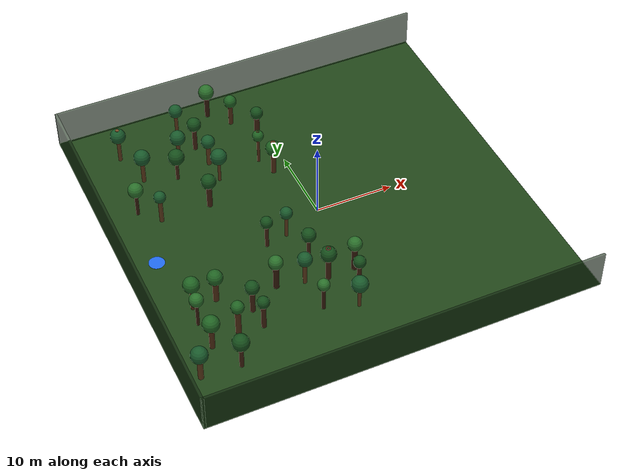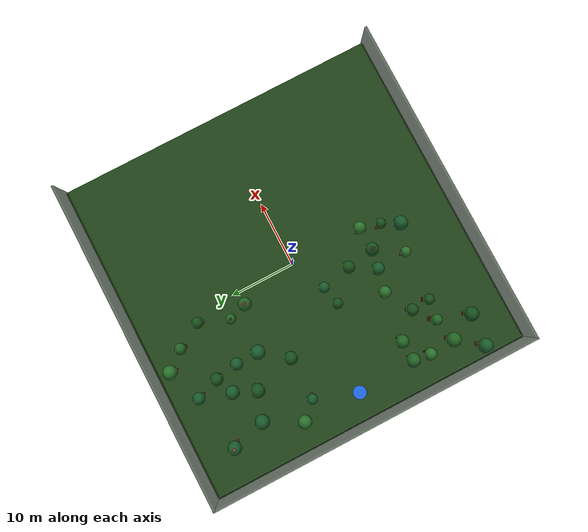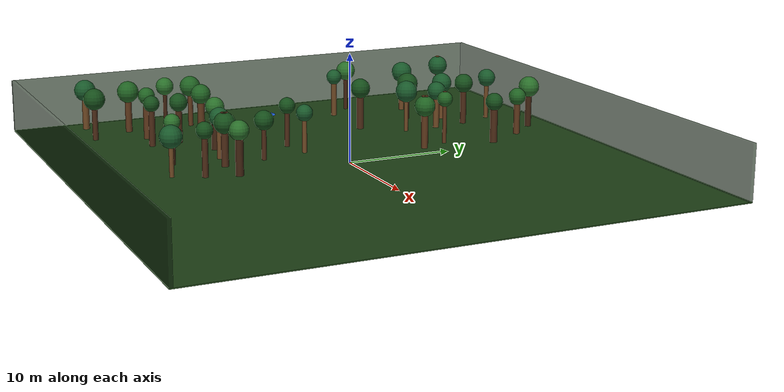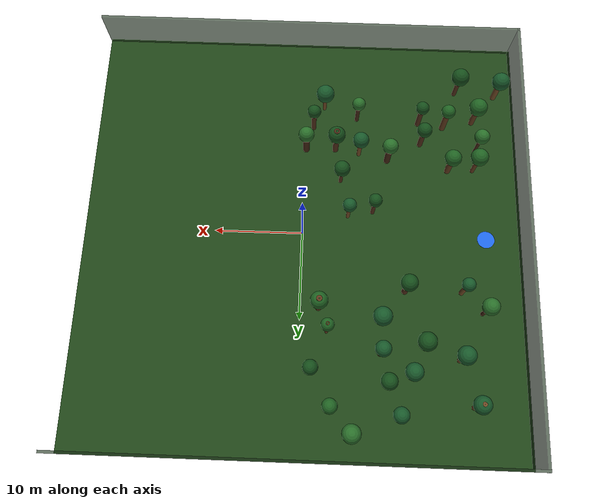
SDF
<sdf version="1.6">
 <world name="ego_forest_50x50x5">
  <include><uri>model://sun</uri></include>
  <model name="forest_floor">
   <static>true</static>
   <pose>0.000 0.000 -0.050 0 0 0</pose>
   <link name="link">
    <collision name="collision"><geometry><box><size>50.000 50.000 0.100</size></box></geometry></collision>
    <visual name="visual">
     <geometry><box><size>50.000 50.000 0.100</size></box></geometry>
     <material><ambient>0.120 0.260 0.090 1.000</ambient><diffuse>0.120 0.260 0.090 1.000</diffuse></material>
     <transparency>0.00</transparency>
    </visual>
   </link>
  </model>
  <model name="north_boundary">
   <static>true</static>
   <pose>0.000 24.850 2.500 0 0 0</pose>
   <link name="link">
    <collision name="collision"><geometry><box><size>50.000 0.300 5.000</size></box></geometry></collision>
    <visual name="visual">
     <geometry><box><size>50.000 0.300 5.000</size></box></geometry>
     <material><ambient>0.080 0.160 0.070 1.000</ambient><diffuse>0.080 0.160 0.070 1.000</diffuse></material>
     <transparency>0.35</transparency>
    </visual>
   </link>
  </model>
  <model name="south_boundary">
   <static>true</static>
   <pose>0.000 -24.850 2.500 0 0 0</pose>
   <link name="link">
    <collision name="collision"><geometry><box><size>50.000 0.300 5.000</size></box></geometry></collision>
    <visual name="visual">
     <geometry><box><size>50.000 0.300 5.000</size></box></geometry>
     <material><ambient>0.080 0.160 0.070 1.000</ambient><diffuse>0.080 0.160 0.070 1.000</diffuse></material>
     <transparency>0.35</transparency>
    </visual>
   </link>
  </model>
  <model name="west_boundary">
   <static>true</static>
   <pose>-24.850 0.000 2.500 0 0 0</pose>
   <link name="link">
    <collision name="collision"><geometry><box><size>0.300 50.000 5.000</size></box></geometry></collision>
    <visual name="visual">
     <geometry><box><size>0.300 50.000 5.000</size></box></geometry>
     <material><ambient>0.080 0.160 0.070 1.000</ambient><diffuse>0.080 0.160 0.070 1.000</diffuse></material>
     <transparency>0.35</transparency>
    </visual>
   </link>
  </model>
  <model name="west_edge_spawn_marker">
   <static>true</static>
   <pose>-21.000 0.000 0.006 0 0 0</pose>
   <link name="link">
    <visual name="visual">
     <geometry><cylinder><radius>1.0</radius><length>0.01</length></cylinder></geometry>
     <material><ambient>0.12 0.40 0.90 1</ambient><diffuse>0.12 0.40 0.90 1</diffuse></material>
    </visual>
   </link>
  </model>
  <model name="tree_004">
   <static>true</static>
   <pose>-22.663 -18.362 0 0 0 0</pose>
   <link name="tree_link">
    <collision name="trunk_collision">
     <pose>0 0 2.207 0 0 0</pose>
     <geometry><cylinder><radius>0.332</radius><length>4.413</length></cylinder></geometry>
    </collision>
    <visual name="trunk_visual">
     <pose>0 0 2.207 0 0 0</pose>
     <geometry><cylinder><radius>0.332</radius><length>4.413</length></cylinder></geometry>
     <material><ambient>0.420 0.270 0.130 1.000</ambient><diffuse>0.420 0.270 0.130 1.000</diffuse></material>
    </visual>
    <visual name="crown_visual">
     <pose>0 0 3.863 0 0 0</pose>
     <geometry><sphere><radius>1.034</radius></sphere></geometry>
     <material><ambient>0.090 0.340 0.160 1.000</ambient><diffuse>0.090 0.340 0.160 1.000</diffuse></material>
    </visual>
   </link>
  </model>
  <model name="tree_005">
   <static>true</static>
   <pose>-11.623 6.382 0 0 0 0</pose>
   <link name="tree_link">
    <collision name="trunk_collision">
     <pose>0 0 2.443 0 0 0</pose>
     <geometry><cylinder><radius>0.351</radius><length>4.885</length></cylinder></geometry>
    </collision>
    <visual name="trunk_visual">
     <pose>0 0 2.443 0 0 0</pose>
     <geometry><cylinder><radius>0.351</radius><length>4.885</length></cylinder></geometry>
     <material><ambient>0.290 0.160 0.080 1.000</ambient><diffuse>0.290 0.160 0.080 1.000</diffuse></material>
    </visual>
    <visual name="crown_visual">
     <pose>0 0 4.036 0 0 0</pose>
     <geometry><sphere><radius>0.964</radius></sphere></geometry>
     <material><ambient>0.080 0.300 0.100 1.000</ambient><diffuse>0.080 0.300 0.100 1.000</diffuse></material>
    </visual>
   </link>
  </model>
  <model name="tree_007">
   <static>true</static>
   <pose>-6.017 -14.760 0 0 0 0</pose>
   <link name="tree_link">
    <collision name="trunk_collision">
     <pose>0 0 2.243 0 0 0</pose>
     <geometry><cylinder><radius>0.242</radius><length>4.485</length></cylinder></geometry>
    </collision>
    <visual name="trunk_visual">
     <pose>0 0 2.243 0 0 0</pose>
     <geometry><cylinder><radius>0.242</radius><length>4.485</length></cylinder></geometry>
     <material><ambient>0.240 0.130 0.060 1.000</ambient><diffuse>0.240 0.130 0.060 1.000</diffuse></material>
    </visual>
    <visual name="crown_visual">
     <pose>0 0 3.935 0 0 0</pose>
     <geometry><sphere><radius>0.758</radius></sphere></geometry>
     <material><ambient>0.160 0.430 0.160 1.000</ambient><diffuse>0.160 0.430 0.160 1.000</diffuse></material>
    </visual>
   </link>
  </model>
  <model name="tree_009">
   <static>true</static>
   <pose>-9.453 16.765 0 0 0 0</pose>
   <link name="tree_link">
    <collision name="trunk_collision">
     <pose>0 0 2.338 0 0 0</pose>
     <geometry><cylinder><radius>0.297</radius><length>4.677</length></cylinder></geometry>
    </collision>
    <visual name="trunk_visual">
     <pose>0 0 2.338 0 0 0</pose>
     <geometry><cylinder><radius>0.297</radius><length>4.677</length></cylinder></geometry>
     <material><ambient>0.290 0.160 0.080 1.000</ambient><diffuse>0.290 0.160 0.080 1.000</diffuse></material>
    </visual>
    <visual name="crown_visual">
     <pose>0 0 4.078 0 0 0</pose>
     <geometry><sphere><radius>0.922</radius></sphere></geometry>
     <material><ambient>0.080 0.300 0.100 1.000</ambient><diffuse>0.080 0.300 0.100 1.000</diffuse></material>
    </visual>
   </link>
  </model>
  <model name="tree_010">
   <static>true</static>
   <pose>-19.730 -8.502 0 0 0 0</pose>
   <link name="tree_link">
    <collision name="trunk_collision">
     <pose>0 0 2.437 0 0 0</pose>
     <geometry><cylinder><radius>0.246</radius><length>4.874</length></cylinder></geometry>
    </collision>
    <visual name="trunk_visual">
     <pose>0 0 2.437 0 0 0</pose>
     <geometry><cylinder><radius>0.246</radius><length>4.874</length></cylinder></geometry>
     <material><ambient>0.360 0.210 0.100 1.000</ambient><diffuse>0.360 0.210 0.100 1.000</diffuse></material>
    </visual>
    <visual name="crown_visual">
     <pose>0 0 3.990 0 0 0</pose>
     <geometry><sphere><radius>1.010</radius></sphere></geometry>
     <material><ambient>0.120 0.380 0.130 1.000</ambient><diffuse>0.120 0.380 0.130 1.000</diffuse></material>
    </visual>
   </link>
  </model>
  <model name="tree_011">
   <static>true</static>
   <pose>-9.646 -9.451 0 0 0 0</pose>
   <link name="tree_link">
    <collision name="trunk_collision">
     <pose>0 0 2.329 0 0 0</pose>
     <geometry><cylinder><radius>0.361</radius><length>4.658</length></cylinder></geometry>
    </collision>
    <visual name="trunk_visual">
     <pose>0 0 2.329 0 0 0</pose>
     <geometry><cylinder><radius>0.361</radius><length>4.658</length></cylinder></geometry>
     <material><ambient>0.240 0.130 0.060 1.000</ambient><diffuse>0.240 0.130 0.060 1.000</diffuse></material>
    </visual>
    <visual name="crown_visual">
     <pose>0 0 4.108 0 0 0</pose>
     <geometry><sphere><radius>0.891</radius></sphere></geometry>
     <material><ambient>0.160 0.430 0.160 1.000</ambient><diffuse>0.160 0.430 0.160 1.000</diffuse></material>
    </visual>
   </link>
  </model>
  <model name="tree_013">
   <static>true</static>
   <pose>-4.216 -6.671 0 0 0 0</pose>
   <link name="tree_link">
    <collision name="trunk_collision">
     <pose>0 0 2.130 0 0 0</pose>
     <geometry><cylinder><radius>0.221</radius><length>4.259</length></cylinder></geometry>
    </collision>
    <visual name="trunk_visual">
     <pose>0 0 2.130 0 0 0</pose>
     <geometry><cylinder><radius>0.221</radius><length>4.259</length></cylinder></geometry>
     <material><ambient>0.290 0.160 0.080 1.000</ambient><diffuse>0.290 0.160 0.080 1.000</diffuse></material>
    </visual>
    <visual name="crown_visual">
     <pose>0 0 3.709 0 0 0</pose>
     <geometry><sphere><radius>0.913</radius></sphere></geometry>
     <material><ambient>0.080 0.300 0.100 1.000</ambient><diffuse>0.080 0.300 0.100 1.000</diffuse></material>
    </visual>
   </link>
  </model>
  <model name="tree_014">
   <static>true</static>
   <pose>-16.320 -14.005 0 0 0 0</pose>
   <link name="tree_link">
    <collision name="trunk_collision">
     <pose>0 0 2.394 0 0 0</pose>
     <geometry><cylinder><radius>0.348</radius><length>4.787</length></cylinder></geometry>
    </collision>
    <visual name="trunk_visual">
     <pose>0 0 2.394 0 0 0</pose>
     <geometry><cylinder><radius>0.348</radius><length>4.787</length></cylinder></geometry>
     <material><ambient>0.360 0.210 0.100 1.000</ambient><diffuse>0.360 0.210 0.100 1.000</diffuse></material>
    </visual>
    <visual name="crown_visual">
     <pose>0 0 4.200 0 0 0</pose>
     <geometry><sphere><radius>0.800</radius></sphere></geometry>
     <material><ambient>0.120 0.380 0.130 1.000</ambient><diffuse>0.120 0.380 0.130 1.000</diffuse></material>
    </visual>
   </link>
  </model>
  <model name="tree_015">
   <static>true</static>
   <pose>-0.065 -10.578 0 0 0 0</pose>
   <link name="tree_link">
    <collision name="trunk_collision">
     <pose>0 0 2.347 0 0 0</pose>
     <geometry><cylinder><radius>0.366</radius><length>4.693</length></cylinder></geometry>
    </collision>
    <visual name="trunk_visual">
     <pose>0 0 2.347 0 0 0</pose>
     <geometry><cylinder><radius>0.366</radius><length>4.693</length></cylinder></geometry>
     <material><ambient>0.240 0.130 0.060 1.000</ambient><diffuse>0.240 0.130 0.060 1.000</diffuse></material>
    </visual>
    <visual name="crown_visual">
     <pose>0 0 4.096 0 0 0</pose>
     <geometry><sphere><radius>0.904</radius></sphere></geometry>
     <material><ambient>0.160 0.430 0.160 1.000</ambient><diffuse>0.160 0.430 0.160 1.000</diffuse></material>
    </visual>
   </link>
  </model>
  <model name="tree_016">
   <static>true</static>
   <pose>-2.099 -16.123 0 0 0 0</pose>
   <link name="tree_link">
    <collision name="trunk_collision">
     <pose>0 0 2.089 0 0 0</pose>
     <geometry><cylinder><radius>0.211</radius><length>4.178</length></cylinder></geometry>
    </collision>
    <visual name="trunk_visual">
     <pose>0 0 2.089 0 0 0</pose>
     <geometry><cylinder><radius>0.211</radius><length>4.178</length></cylinder></geometry>
     <material><ambient>0.420 0.270 0.130 1.000</ambient><diffuse>0.420 0.270 0.130 1.000</diffuse></material>
    </visual>
    <visual name="crown_visual">
     <pose>0 0 3.628 0 0 0</pose>
     <geometry><sphere><radius>1.041</radius></sphere></geometry>
     <material><ambient>0.090 0.340 0.160 1.000</ambient><diffuse>0.090 0.340 0.160 1.000</diffuse></material>
    </visual>
   </link>
  </model>
  <model name="tree_017">
   <static>true</static>
   <pose>-3.518 -10.687 0 0 0 0</pose>
   <link name="tree_link">
    <collision name="trunk_collision">
     <pose>0 0 2.488 0 0 0</pose>
     <geometry><cylinder><radius>0.335</radius><length>4.977</length></cylinder></geometry>
    </collision>
    <visual name="trunk_visual">
     <pose>0 0 2.488 0 0 0</pose>
     <geometry><cylinder><radius>0.335</radius><length>4.977</length></cylinder></geometry>
     <material><ambient>0.290 0.160 0.080 1.000</ambient><diffuse>0.290 0.160 0.080 1.000</diffuse></material>
    </visual>
    <visual name="crown_visual">
     <pose>0 0 4.006 0 0 0</pose>
     <geometry><sphere><radius>0.994</radius></sphere></geometry>
     <material><ambient>0.080 0.300 0.100 1.000</ambient><diffuse>0.080 0.300 0.100 1.000</diffuse></material>
    </visual>
   </link>
  </model>
  <model name="tree_018">
   <static>true</static>
   <pose>-16.784 -8.391 0 0 0 0</pose>
   <link name="tree_link">
    <collision name="trunk_collision">
     <pose>0 0 2.162 0 0 0</pose>
     <geometry><cylinder><radius>0.351</radius><length>4.324</length></cylinder></geometry>
    </collision>
    <visual name="trunk_visual">
     <pose>0 0 2.162 0 0 0</pose>
     <geometry><cylinder><radius>0.351</radius><length>4.324</length></cylinder></geometry>
     <material><ambient>0.360 0.210 0.100 1.000</ambient><diffuse>0.360 0.210 0.100 1.000</diffuse></material>
    </visual>
    <visual name="crown_visual">
     <pose>0 0 3.774 0 0 0</pose>
     <geometry><sphere><radius>0.963</radius></sphere></geometry>
     <material><ambient>0.120 0.380 0.130 1.000</ambient><diffuse>0.120 0.380 0.130 1.000</diffuse></material>
    </visual>
   </link>
  </model>
  <model name="tree_019">
   <static>true</static>
   <pose>-5.672 22.049 0 0 0 0</pose>
   <link name="tree_link">
    <collision name="trunk_collision">
     <pose>0 0 2.427 0 0 0</pose>
     <geometry><cylinder><radius>0.310</radius><length>4.855</length></cylinder></geometry>
    </collision>
    <visual name="trunk_visual">
     <pose>0 0 2.427 0 0 0</pose>
     <geometry><cylinder><radius>0.310</radius><length>4.855</length></cylinder></geometry>
     <material><ambient>0.240 0.130 0.060 1.000</ambient><diffuse>0.240 0.130 0.060 1.000</diffuse></material>
    </visual>
    <visual name="crown_visual">
     <pose>0 0 3.990 0 0 0</pose>
     <geometry><sphere><radius>1.010</radius></sphere></geometry>
     <material><ambient>0.160 0.430 0.160 1.000</ambient><diffuse>0.160 0.430 0.160 1.000</diffuse></material>
    </visual>
   </link>
  </model>
  <model name="tree_020">
   <static>true</static>
   <pose>-12.094 15.689 0 0 0 0</pose>
   <link name="tree_link">
    <collision name="trunk_collision">
     <pose>0 0 2.122 0 0 0</pose>
     <geometry><cylinder><radius>0.233</radius><length>4.245</length></cylinder></geometry>
    </collision>
    <visual name="trunk_visual">
     <pose>0 0 2.122 0 0 0</pose>
     <geometry><cylinder><radius>0.233</radius><length>4.245</length></cylinder></geometry>
     <material><ambient>0.420 0.270 0.130 1.000</ambient><diffuse>0.420 0.270 0.130 1.000</diffuse></material>
    </visual>
    <visual name="crown_visual">
     <pose>0 0 3.695 0 0 0</pose>
     <geometry><sphere><radius>0.986</radius></sphere></geometry>
     <material><ambient>0.090 0.340 0.160 1.000</ambient><diffuse>0.090 0.340 0.160 1.000</diffuse></material>
    </visual>
   </link>
  </model>
  <model name="tree_021">
   <static>true</static>
   <pose>-13.585 -11.702 0 0 0 0</pose>
   <link name="tree_link">
    <collision name="trunk_collision">
     <pose>0 0 2.229 0 0 0</pose>
     <geometry><cylinder><radius>0.311</radius><length>4.458</length></cylinder></geometry>
    </collision>
    <visual name="trunk_visual">
     <pose>0 0 2.229 0 0 0</pose>
     <geometry><cylinder><radius>0.311</radius><length>4.458</length></cylinder></geometry>
     <material><ambient>0.290 0.160 0.080 1.000</ambient><diffuse>0.290 0.160 0.080 1.000</diffuse></material>
    </visual>
    <visual name="crown_visual">
     <pose>0 0 3.908 0 0 0</pose>
     <geometry><sphere><radius>0.874</radius></sphere></geometry>
     <material><ambient>0.080 0.300 0.100 1.000</ambient><diffuse>0.080 0.300 0.100 1.000</diffuse></material>
    </visual>
   </link>
  </model>
  <model name="tree_025">
   <static>true</static>
   <pose>-13.366 -14.426 0 0 0 0</pose>
   <link name="tree_link">
    <collision name="trunk_collision">
     <pose>0 0 2.307 0 0 0</pose>
     <geometry><cylinder><radius>0.299</radius><length>4.613</length></cylinder></geometry>
    </collision>
    <visual name="trunk_visual">
     <pose>0 0 2.307 0 0 0</pose>
     <geometry><cylinder><radius>0.299</radius><length>4.613</length></cylinder></geometry>
     <material><ambient>0.290 0.160 0.080 1.000</ambient><diffuse>0.290 0.160 0.080 1.000</diffuse></material>
    </visual>
    <visual name="crown_visual">
     <pose>0 0 4.063 0 0 0</pose>
     <geometry><sphere><radius>0.768</radius></sphere></geometry>
     <material><ambient>0.080 0.300 0.100 1.000</ambient><diffuse>0.080 0.300 0.100 1.000</diffuse></material>
    </visual>
   </link>
  </model>
  <model name="tree_026">
   <static>true</static>
   <pose>-3.002 11.218 0 0 0 0</pose>
   <link name="tree_link">
    <collision name="trunk_collision">
     <pose>0 0 2.492 0 0 0</pose>
     <geometry><cylinder><radius>0.193</radius><length>4.984</length></cylinder></geometry>
    </collision>
    <visual name="trunk_visual">
     <pose>0 0 2.492 0 0 0</pose>
     <geometry><cylinder><radius>0.193</radius><length>4.984</length></cylinder></geometry>
     <material><ambient>0.360 0.210 0.100 1.000</ambient><diffuse>0.360 0.210 0.100 1.000</diffuse></material>
    </visual>
    <visual name="crown_visual">
     <pose>0 0 4.267 0 0 0</pose>
     <geometry><sphere><radius>0.733</radius></sphere></geometry>
     <material><ambient>0.120 0.380 0.130 1.000</ambient><diffuse>0.120 0.380 0.130 1.000</diffuse></material>
    </visual>
   </link>
  </model>
  <model name="tree_028">
   <static>true</static>
   <pose>-8.893 13.413 0 0 0 0</pose>
   <link name="tree_link">
    <collision name="trunk_collision">
     <pose>0 0 2.127 0 0 0</pose>
     <geometry><cylinder><radius>0.296</radius><length>4.253</length></cylinder></geometry>
    </collision>
    <visual name="trunk_visual">
     <pose>0 0 2.127 0 0 0</pose>
     <geometry><cylinder><radius>0.296</radius><length>4.253</length></cylinder></geometry>
     <material><ambient>0.420 0.270 0.130 1.000</ambient><diffuse>0.420 0.270 0.130 1.000</diffuse></material>
    </visual>
    <visual name="crown_visual">
     <pose>0 0 3.703 0 0 0</pose>
     <geometry><sphere><radius>0.891</radius></sphere></geometry>
     <material><ambient>0.090 0.340 0.160 1.000</ambient><diffuse>0.090 0.340 0.160 1.000</diffuse></material>
    </visual>
   </link>
  </model>
  <model name="tree_032">
   <static>true</static>
   <pose>-10.655 20.076 0 0 0 0</pose>
   <link name="tree_link">
    <collision name="trunk_collision">
     <pose>0 0 2.429 0 0 0</pose>
     <geometry><cylinder><radius>0.226</radius><length>4.859</length></cylinder></geometry>
    </collision>
    <visual name="trunk_visual">
     <pose>0 0 2.429 0 0 0</pose>
     <geometry><cylinder><radius>0.226</radius><length>4.859</length></cylinder></geometry>
     <material><ambient>0.420 0.270 0.130 1.000</ambient><diffuse>0.420 0.270 0.130 1.000</diffuse></material>
    </visual>
    <visual name="crown_visual">
     <pose>0 0 4.128 0 0 0</pose>
     <geometry><sphere><radius>0.872</radius></sphere></geometry>
     <material><ambient>0.090 0.340 0.160 1.000</ambient><diffuse>0.090 0.340 0.160 1.000</diffuse></material>
    </visual>
   </link>
  </model>
  <model name="tree_033">
   <static>true</static>
   <pose>-1.330 15.627 0 0 0 0</pose>
   <link name="tree_link">
    <collision name="trunk_collision">
     <pose>0 0 2.246 0 0 0</pose>
     <geometry><cylinder><radius>0.351</radius><length>4.493</length></cylinder></geometry>
    </collision>
    <visual name="trunk_visual">
     <pose>0 0 2.246 0 0 0</pose>
     <geometry><cylinder><radius>0.351</radius><length>4.493</length></cylinder></geometry>
     <material><ambient>0.290 0.160 0.080 1.000</ambient><diffuse>0.290 0.160 0.080 1.000</diffuse></material>
    </visual>
    <visual name="crown_visual">
     <pose>0 0 3.943 0 0 0</pose>
     <geometry><sphere><radius>0.832</radius></sphere></geometry>
     <material><ambient>0.080 0.300 0.100 1.000</ambient><diffuse>0.080 0.300 0.100 1.000</diffuse></material>
    </visual>
   </link>
  </model>
  <model name="tree_036">
   <static>true</static>
   <pose>-17.955 6.344 0 0 0 0</pose>
   <link name="tree_link">
    <collision name="trunk_collision">
     <pose>0 0 2.271 0 0 0</pose>
     <geometry><cylinder><radius>0.270</radius><length>4.543</length></cylinder></geometry>
    </collision>
    <visual name="trunk_visual">
     <pose>0 0 2.271 0 0 0</pose>
     <geometry><cylinder><radius>0.270</radius><length>4.543</length></cylinder></geometry>
     <material><ambient>0.420 0.270 0.130 1.000</ambient><diffuse>0.420 0.270 0.130 1.000</diffuse></material>
    </visual>
    <visual name="crown_visual">
     <pose>0 0 3.993 0 0 0</pose>
     <geometry><sphere><radius>0.762</radius></sphere></geometry>
     <material><ambient>0.090 0.340 0.160 1.000</ambient><diffuse>0.090 0.340 0.160 1.000</diffuse></material>
    </visual>
   </link>
  </model>
  <model name="tree_041">
   <static>true</static>
   <pose>-13.498 12.500 0 0 0 0</pose>
   <link name="tree_link">
    <collision name="trunk_collision">
     <pose>0 0 2.096 0 0 0</pose>
     <geometry><cylinder><radius>0.223</radius><length>4.193</length></cylinder></geometry>
    </collision>
    <visual name="trunk_visual">
     <pose>0 0 2.096 0 0 0</pose>
     <geometry><cylinder><radius>0.223</radius><length>4.193</length></cylinder></geometry>
     <material><ambient>0.290 0.160 0.080 1.000</ambient><diffuse>0.290 0.160 0.080 1.000</diffuse></material>
    </visual>
    <visual name="crown_visual">
     <pose>0 0 3.643 0 0 0</pose>
     <geometry><sphere><radius>1.050</radius></sphere></geometry>
     <material><ambient>0.080 0.300 0.100 1.000</ambient><diffuse>0.080 0.300 0.100 1.000</diffuse></material>
    </visual>
   </link>
  </model>
  <model name="tree_042">
   <static>true</static>
   <pose>-3.427 19.409 0 0 0 0</pose>
   <link name="tree_link">
    <collision name="trunk_collision">
     <pose>0 0 2.113 0 0 0</pose>
     <geometry><cylinder><radius>0.305</radius><length>4.226</length></cylinder></geometry>
    </collision>
    <visual name="trunk_visual">
     <pose>0 0 2.113 0 0 0</pose>
     <geometry><cylinder><radius>0.305</radius><length>4.226</length></cylinder></geometry>
     <material><ambient>0.360 0.210 0.100 1.000</ambient><diffuse>0.360 0.210 0.100 1.000</diffuse></material>
    </visual>
    <visual name="crown_visual">
     <pose>0 0 3.676 0 0 0</pose>
     <geometry><sphere><radius>0.831</radius></sphere></geometry>
     <material><ambient>0.120 0.380 0.130 1.000</ambient><diffuse>0.120 0.380 0.130 1.000</diffuse></material>
    </visual>
   </link>
  </model>
  <model name="tree_043">
   <static>true</static>
   <pose>-20.198 8.660 0 0 0 0</pose>
   <link name="tree_link">
    <collision name="trunk_collision">
     <pose>0 0 2.426 0 0 0</pose>
     <geometry><cylinder><radius>0.223</radius><length>4.851</length></cylinder></geometry>
    </collision>
    <visual name="trunk_visual">
     <pose>0 0 2.426 0 0 0</pose>
     <geometry><cylinder><radius>0.223</radius><length>4.851</length></cylinder></geometry>
     <material><ambient>0.240 0.130 0.060 1.000</ambient><diffuse>0.240 0.130 0.060 1.000</diffuse></material>
    </visual>
    <visual name="crown_visual">
     <pose>0 0 4.036 0 0 0</pose>
     <geometry><sphere><radius>0.964</radius></sphere></geometry>
     <material><ambient>0.160 0.430 0.160 1.000</ambient><diffuse>0.160 0.430 0.160 1.000</diffuse></material>
    </visual>
   </link>
  </model>
  <model name="tree_044">
   <static>true</static>
   <pose>-6.307 -10.201 0 0 0 0</pose>
   <link name="tree_link">
    <collision name="trunk_collision">
     <pose>0 0 2.212 0 0 0</pose>
     <geometry><cylinder><radius>0.246</radius><length>4.424</length></cylinder></geometry>
    </collision>
    <visual name="trunk_visual">
     <pose>0 0 2.212 0 0 0</pose>
     <geometry><cylinder><radius>0.246</radius><length>4.424</length></cylinder></geometry>
     <material><ambient>0.420 0.270 0.130 1.000</ambient><diffuse>0.420 0.270 0.130 1.000</diffuse></material>
    </visual>
    <visual name="crown_visual">
     <pose>0 0 3.874 0 0 0</pose>
     <geometry><sphere><radius>0.921</radius></sphere></geometry>
     <material><ambient>0.090 0.340 0.160 1.000</ambient><diffuse>0.090 0.340 0.160 1.000</diffuse></material>
    </visual>
   </link>
  </model>
  <model name="tree_048">
   <static>true</static>
   <pose>-5.147 -2.291 0 0 0 0</pose>
   <link name="tree_link">
    <collision name="trunk_collision">
     <pose>0 0 2.164 0 0 0</pose>
     <geometry><cylinder><radius>0.217</radius><length>4.327</length></cylinder></geometry>
    </collision>
    <visual name="trunk_visual">
     <pose>0 0 2.164 0 0 0</pose>
     <geometry><cylinder><radius>0.217</radius><length>4.327</length></cylinder></geometry>
     <material><ambient>0.420 0.270 0.130 1.000</ambient><diffuse>0.420 0.270 0.130 1.000</diffuse></material>
    </visual>
    <visual name="crown_visual">
     <pose>0 0 3.777 0 0 0</pose>
     <geometry><sphere><radius>0.787</radius></sphere></geometry>
     <material><ambient>0.090 0.340 0.160 1.000</ambient><diffuse>0.090 0.340 0.160 1.000</diffuse></material>
    </visual>
   </link>
  </model>
  <model name="tree_050">
   <static>true</static>
   <pose>-2.066 8.616 0 0 0 0</pose>
   <link name="tree_link">
    <collision name="trunk_collision">
     <pose>0 0 2.495 0 0 0</pose>
     <geometry><cylinder><radius>0.321</radius><length>4.990</length></cylinder></geometry>
    </collision>
    <visual name="trunk_visual">
     <pose>0 0 2.495 0 0 0</pose>
     <geometry><cylinder><radius>0.321</radius><length>4.990</length></cylinder></geometry>
     <material><ambient>0.360 0.210 0.100 1.000</ambient><diffuse>0.360 0.210 0.100 1.000</diffuse></material>
    </visual>
    <visual name="crown_visual">
     <pose>0 0 4.021 0 0 0</pose>
     <geometry><sphere><radius>0.979</radius></sphere></geometry>
     <material><ambient>0.120 0.380 0.130 1.000</ambient><diffuse>0.120 0.380 0.130 1.000</diffuse></material>
    </visual>
   </link>
  </model>
  <model name="tree_053">
   <static>true</static>
   <pose>-7.976 -2.884 0 0 0 0</pose>
   <link name="tree_link">
    <collision name="trunk_collision">
     <pose>0 0 2.240 0 0 0</pose>
     <geometry><cylinder><radius>0.241</radius><length>4.480</length></cylinder></geometry>
    </collision>
    <visual name="trunk_visual">
     <pose>0 0 2.240 0 0 0</pose>
     <geometry><cylinder><radius>0.241</radius><length>4.480</length></cylinder></geometry>
     <material><ambient>0.290 0.160 0.080 1.000</ambient><diffuse>0.290 0.160 0.080 1.000</diffuse></material>
    </visual>
    <visual name="crown_visual">
     <pose>0 0 3.930 0 0 0</pose>
     <geometry><sphere><radius>0.778</radius></sphere></geometry>
     <material><ambient>0.080 0.300 0.100 1.000</ambient><diffuse>0.080 0.300 0.100 1.000</diffuse></material>
    </visual>
   </link>
  </model>
  <model name="tree_054">
   <static>true</static>
   <pose>-19.860 -14.818 0 0 0 0</pose>
   <link name="tree_link">
    <collision name="trunk_collision">
     <pose>0 0 2.354 0 0 0</pose>
     <geometry><cylinder><radius>0.320</radius><length>4.708</length></cylinder></geometry>
    </collision>
    <visual name="trunk_visual">
     <pose>0 0 2.354 0 0 0</pose>
     <geometry><cylinder><radius>0.320</radius><length>4.708</length></cylinder></geometry>
     <material><ambient>0.360 0.210 0.100 1.000</ambient><diffuse>0.360 0.210 0.100 1.000</diffuse></material>
    </visual>
    <visual name="crown_visual">
     <pose>0 0 3.959 0 0 0</pose>
     <geometry><sphere><radius>1.041</radius></sphere></geometry>
     <material><ambient>0.120 0.380 0.130 1.000</ambient><diffuse>0.120 0.380 0.130 1.000</diffuse></material>
    </visual>
   </link>
  </model>
  <model name="tree_057">
   <static>true</static>
   <pose>-17.892 -18.692 0 0 0 0</pose>
   <link name="tree_link">
    <collision name="trunk_collision">
     <pose>0 0 2.369 0 0 0</pose>
     <geometry><cylinder><radius>0.267</radius><length>4.738</length></cylinder></geometry>
    </collision>
    <visual name="trunk_visual">
     <pose>0 0 2.369 0 0 0</pose>
     <geometry><cylinder><radius>0.267</radius><length>4.738</length></cylinder></geometry>
     <material><ambient>0.290 0.160 0.080 1.000</ambient><diffuse>0.290 0.160 0.080 1.000</diffuse></material>
    </visual>
    <visual name="crown_visual">
     <pose>0 0 3.965 0 0 0</pose>
     <geometry><sphere><radius>1.035</radius></sphere></geometry>
     <material><ambient>0.080 0.300 0.100 1.000</ambient><diffuse>0.080 0.300 0.100 1.000</diffuse></material>
    </visual>
   </link>
  </model>
  <model name="tree_060">
   <static>true</static>
   <pose>-17.495 13.847 0 0 0 0</pose>
   <link name="tree_link">
    <collision name="trunk_collision">
     <pose>0 0 2.398 0 0 0</pose>
     <geometry><cylinder><radius>0.261</radius><length>4.796</length></cylinder></geometry>
    </collision>
    <visual name="trunk_visual">
     <pose>0 0 2.398 0 0 0</pose>
     <geometry><cylinder><radius>0.261</radius><length>4.796</length></cylinder></geometry>
     <material><ambient>0.420 0.270 0.130 1.000</ambient><diffuse>0.420 0.270 0.130 1.000</diffuse></material>
    </visual>
    <visual name="crown_visual">
     <pose>0 0 3.971 0 0 0</pose>
     <geometry><sphere><radius>1.029</radius></sphere></geometry>
     <material><ambient>0.090 0.340 0.160 1.000</ambient><diffuse>0.090 0.340 0.160 1.000</diffuse></material>
    </visual>
   </link>
  </model>
  <model name="tree_064">
   <static>true</static>
   <pose>-8.812 10.058 0 0 0 0</pose>
   <link name="tree_link">
    <collision name="trunk_collision">
     <pose>0 0 2.355 0 0 0</pose>
     <geometry><cylinder><radius>0.190</radius><length>4.710</length></cylinder></geometry>
    </collision>
    <visual name="trunk_visual">
     <pose>0 0 2.355 0 0 0</pose>
     <geometry><cylinder><radius>0.190</radius><length>4.710</length></cylinder></geometry>
     <material><ambient>0.420 0.270 0.130 1.000</ambient><diffuse>0.420 0.270 0.130 1.000</diffuse></material>
    </visual>
    <visual name="crown_visual">
     <pose>0 0 3.952 0 0 0</pose>
     <geometry><sphere><radius>1.048</radius></sphere></geometry>
     <material><ambient>0.090 0.340 0.160 1.000</ambient><diffuse>0.090 0.340 0.160 1.000</diffuse></material>
    </visual>
   </link>
  </model>
  <model name="tree_065">
   <static>true</static>
   <pose>-0.863 -13.463 0 0 0 0</pose>
   <link name="tree_link">
    <collision name="trunk_collision">
     <pose>0 0 2.374 0 0 0</pose>
     <geometry><cylinder><radius>0.276</radius><length>4.747</length></cylinder></geometry>
    </collision>
    <visual name="trunk_visual">
     <pose>0 0 2.374 0 0 0</pose>
     <geometry><cylinder><radius>0.276</radius><length>4.747</length></cylinder></geometry>
     <material><ambient>0.290 0.160 0.080 1.000</ambient><diffuse>0.290 0.160 0.080 1.000</diffuse></material>
    </visual>
    <visual name="crown_visual">
     <pose>0 0 4.197 0 0 0</pose>
     <geometry><sphere><radius>0.778</radius></sphere></geometry>
     <material><ambient>0.080 0.300 0.100 1.000</ambient><diffuse>0.080 0.300 0.100 1.000</diffuse></material>
    </visual>
   </link>
  </model>
  <model name="tree_067">
   <static>true</static>
   <pose>-20.084 -11.003 0 0 0 0</pose>
   <link name="tree_link">
    <collision name="trunk_collision">
     <pose>0 0 2.445 0 0 0</pose>
     <geometry><cylinder><radius>0.199</radius><length>4.889</length></cylinder></geometry>
    </collision>
    <visual name="trunk_visual">
     <pose>0 0 2.445 0 0 0</pose>
     <geometry><cylinder><radius>0.199</radius><length>4.889</length></cylinder></geometry>
     <material><ambient>0.240 0.130 0.060 1.000</ambient><diffuse>0.240 0.130 0.060 1.000</diffuse></material>
    </visual>
    <visual name="crown_visual">
     <pose>0 0 4.135 0 0 0</pose>
     <geometry><sphere><radius>0.865</radius></sphere></geometry>
     <material><ambient>0.160 0.430 0.160 1.000</ambient><diffuse>0.160 0.430 0.160 1.000</diffuse></material>
    </visual>
   </link>
  </model>
  <model name="tree_068">
   <static>true</static>
   <pose>-18.871 18.779 0 0 0 0</pose>
   <link name="tree_link">
    <collision name="trunk_collision">
     <pose>0 0 2.497 0 0 0</pose>
     <geometry><cylinder><radius>0.248</radius><length>4.994</length></cylinder></geometry>
    </collision>
    <visual name="trunk_visual">
     <pose>0 0 2.497 0 0 0</pose>
     <geometry><cylinder><radius>0.248</radius><length>4.994</length></cylinder></geometry>
     <material><ambient>0.420 0.270 0.130 1.000</ambient><diffuse>0.420 0.270 0.130 1.000</diffuse></material>
    </visual>
    <visual name="crown_visual">
     <pose>0 0 4.016 0 0 0</pose>
     <geometry><sphere><radius>0.984</radius></sphere></geometry>
     <material><ambient>0.090 0.340 0.160 1.000</ambient><diffuse>0.090 0.340 0.160 1.000</diffuse></material>
    </visual>
   </link>
  </model>
 </world>
</sdf>
